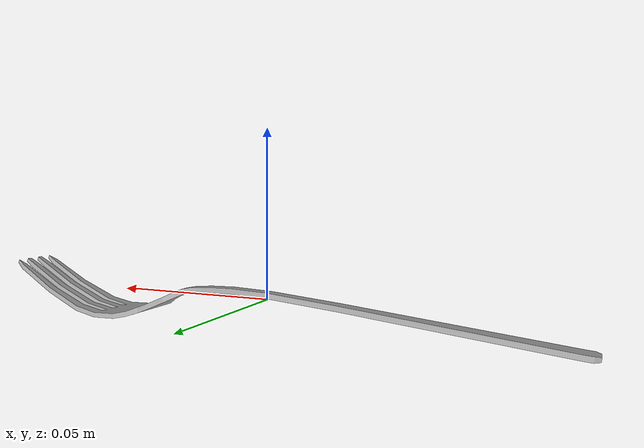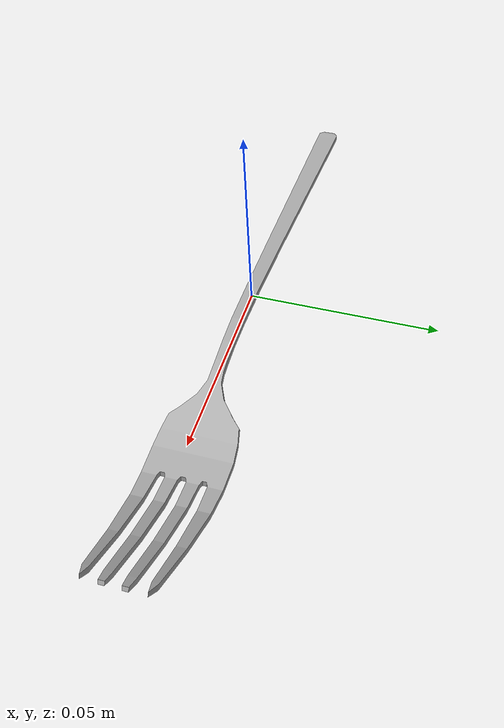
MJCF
<?xml version="1.0" ?>
<mujoco model="paicha">
	<compiler meshdir="paicha/meshes" texturedir="paicha/textures" angle="radian" autolimits="true" balanceinertia="true" boundmass="0.000001" boundinertia="0.000001"/>
	<default>
		<default class="visual">
			<geom contype="0" conaffinity="0"/>
		</default>
		<default class="collision">
			<geom rgba="1.0 0.0 0.0 0.0"/>
		</default>
	</default>
	<asset>
		<mesh name="Paicha" file="stl/Paicha.stl" scale="1.0 1.0 1.0"/>
		<mesh name="Paicha_001" file="stl/Paicha_001.stl" scale="1.0 1.0 1.0"/>
		<mesh name="Paicha_002" file="stl/Paicha_002.stl" scale="1.0 1.0 1.0"/>
		<mesh name="Paicha_003" file="stl/Paicha_003.stl" scale="1.0 1.0 1.0"/>
		<mesh name="Paicha_004" file="stl/Paicha_004.stl" scale="1.0 1.0 1.0"/>
		<material name="M_Paicha" rgba="0.660099983215332 0.660099983215332 0.660099983215332 1.0" emission="0.0"/>
	</asset>
	<worldbody>
		<body name="paicha" pos="0.0 0.0 0.0" quat="1.0 0.0 0.0 0.0">
			<inertial mass="0.015963025391101837" pos="0.017689913511276245 2.957269089165493e-06 -0.003262417856603861" quat="0.707278311252594 -0.7069140076637268 0.0038363435305655003 0.003902786411345005" diaginertia="6.571041808456357e-07 4.8253357817884535e-05 4.832317426917143e-05"/>
			<geom name="Paicha" type="mesh" pos="0.0 0.0 0.0" quat="1.0 0.0 0.0 0.0" mesh="Paicha" material="M_Paicha" class="visual"/>
			<geom name="Paicha_001" type="mesh" pos="0.0 0.0 0.0" quat="1.0 0.0 0.0 0.0" mesh="Paicha_001" class="collision"/>
			<geom name="Paicha_002" type="mesh" pos="0.0 0.0 0.0" quat="1.0 0.0 0.0 0.0" mesh="Paicha_002" class="collision"/>
			<geom name="Paicha_003" type="mesh" pos="0.0 0.0 0.0" quat="1.0 0.0 0.0 0.0" mesh="Paicha_003" class="collision"/>
			<geom name="Paicha_004" type="mesh" pos="0.0 0.0 0.0" quat="1.0 0.0 0.0 0.0" mesh="Paicha_004" class="collision"/>
		</body>
	</worldbody>
	<equality/>
</mujoco>
